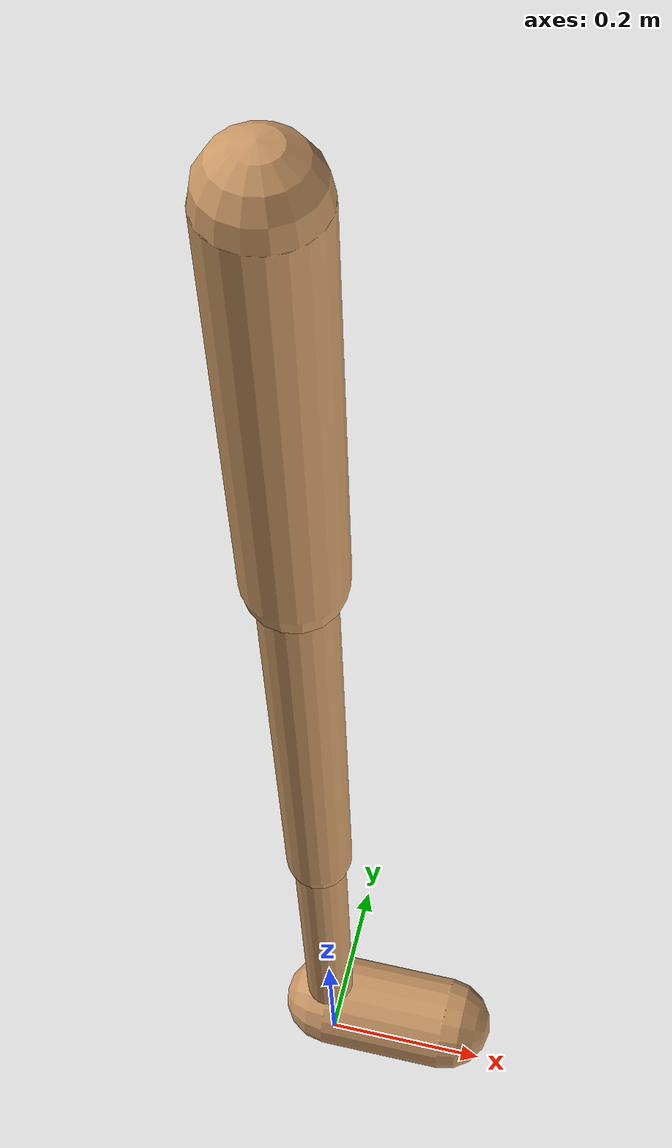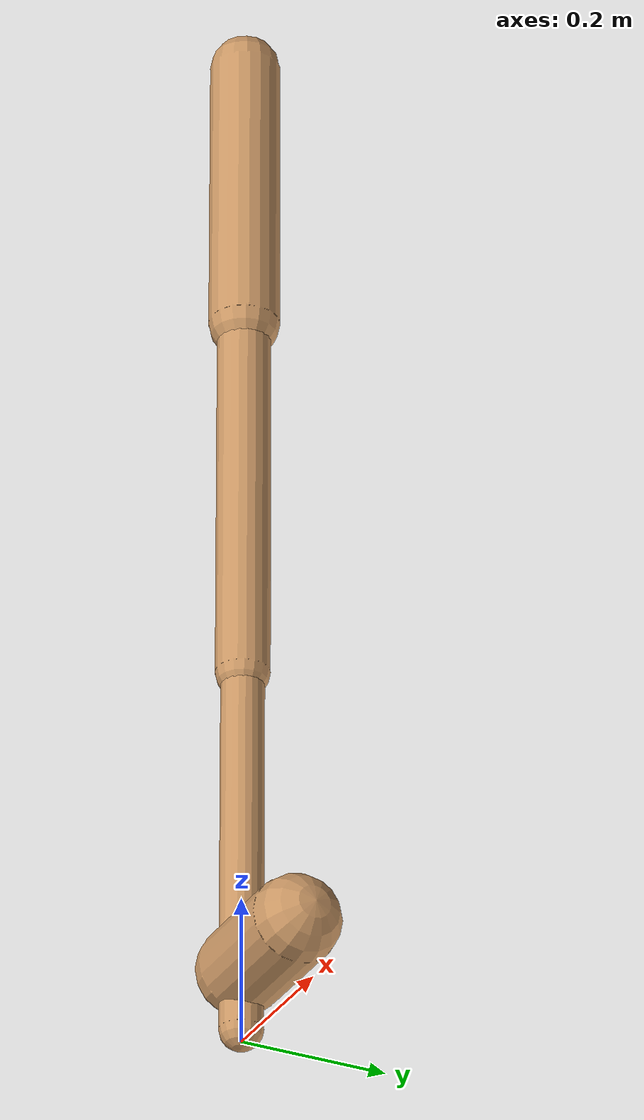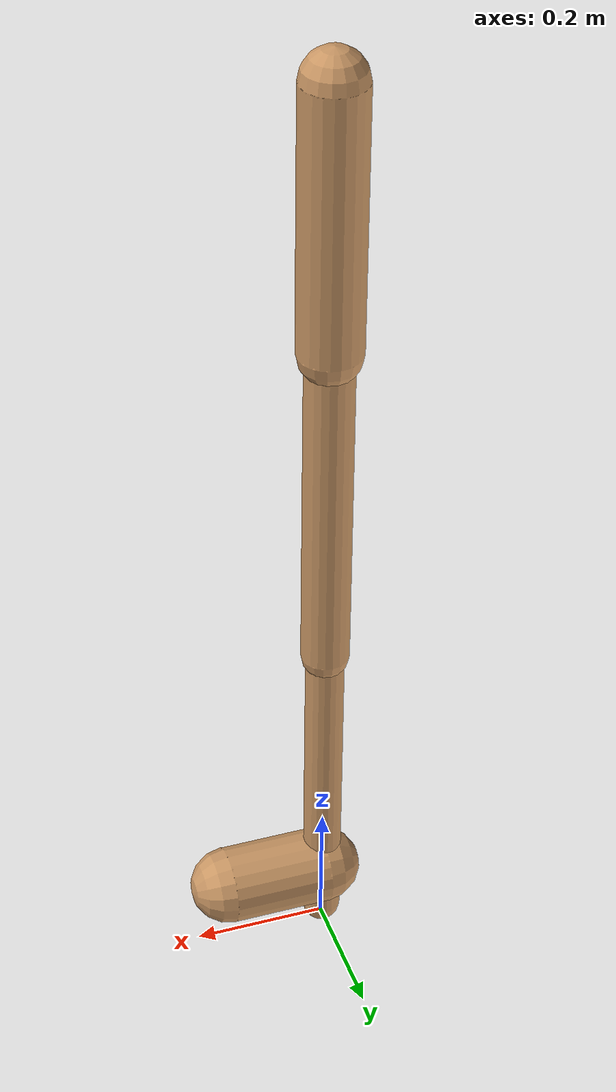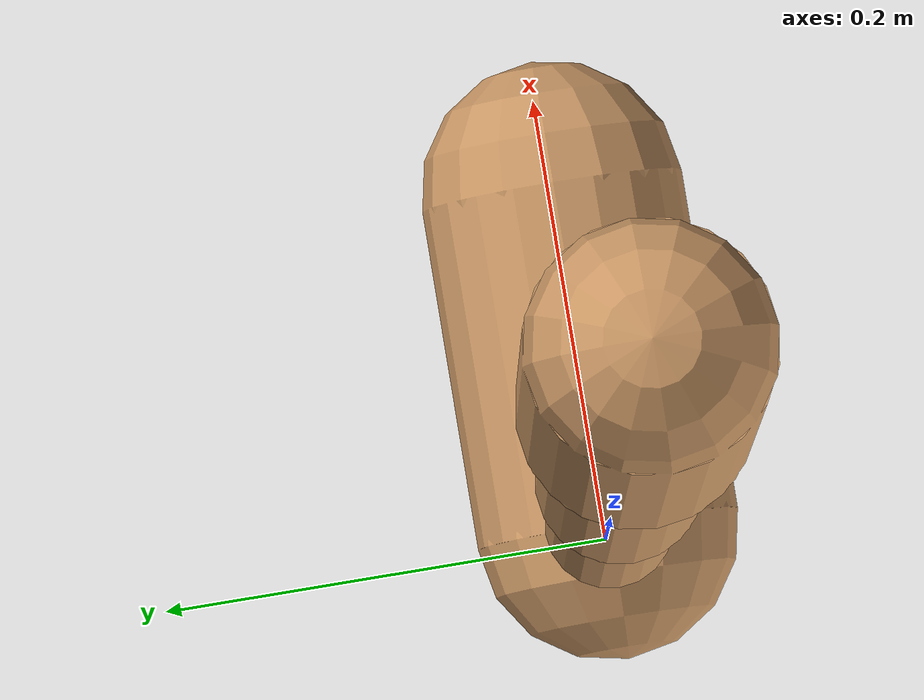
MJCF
<mujoco model="walker2d">
  <compiler angle="degree" coordinate="global" inertiafromgeom="true" />
  <default>
    <joint armature="0.01" damping=".1" limited="true" />
    <geom conaffinity="0" condim="3" contype="1" density="1000" friction="0.8 .1 .1" rgba="0.8 0.6 .4 1" />
  </default>
  <option integrator="RK4" timestep="0.002" />
  <worldbody>

    <body name="torso" pos="0 0 0.1568443020666312">
      <joint armature="0" axis="1 0 0" damping="0" limited="false" name="ignorex" pos="0 0 0" stiffness="0" type="slide" />
      <joint armature="0" axis="0 0 1" damping="0" limited="false" name="ignorez" pos="0 0 0" ref="1.25" stiffness="0" type="slide" />
      <joint armature="0" axis="0 1 0" damping="0" limited="false" name="ignorey" pos="0 0 0" stiffness="0" type="hinge" />
      <geom fromto="0 0 1.45 0 0 1.05" name="torso_geom" size="0.04714431817988906" type="capsule" />
      <body name="thigh">
        <joint axis="0 -1 0" name="thigh_joint" pos="0 0 1.05" range="-150 0" type="hinge" />
        <geom fromto="0.0 0.0 1.05 0.0 0.0 0.5257053306000168" name="thigh_geom" size="0.035731555219335756" type="capsule" />
        <body name="leg" pos="0.0 0.0 -0.0742946693999832">
          <joint axis="0 -1 0" name="leg_joint" pos="0 0 0.6" range="-150 0" type="hinge" />
          <geom fromto="0.0 0.0 0.6 0.0 0.0 0.01745036733335202" name="leg_geom" size="0.028585244175468604" type="capsule" />
          <body name="foot" pos="0.0 0.0 -0.08254963266664798">
            <joint axis="0 -1 0" name="foot_joint" pos="0 0 0.1" range="-45 45" type="hinge" />
            <geom fromto="0.0 0.0 0.1 0.15207274935202003 0.0 0.1" name="foot_geom" size="0.05825056751133083" type="capsule" />
          </body>
        </body>
      </body>

      <body name="thigh_left">
        <joint axis="0 -1 0" name="thigh_left_joint" pos="0 0 1.05" range="-150 0" type="hinge" />
        <geom fromto="0.0 0.0 1.05 0.0 0.0 0.5257053306000168" name="thigh_left_geom" rgba=".7 .3 .6 1" size="0.035731555219335756" type="capsule" />
        <body name="leg_left" pos="0.0 0.0 -0.0742946693999832">
          <joint axis="0 -1 0" name="leg_left_joint" pos="0 0 0.6" range="-150 0" type="hinge" />
          <geom fromto="0.0 0.0 0.6 0.0 0.0 0.01745036733335202" name="leg_left_geom" rgba=".7 .3 .6 1" size="0.028585244175468604" type="capsule" />
          <body name="foot_left" pos="0.0 0.0 -0.08254963266664798">
            <joint axis="0 -1 0" name="foot_left_joint" pos="0 0 0.1" range="-45 45" type="hinge" />
            <geom fromto="0.0 0.0 0.1 0.15207274935202003 0.0 0.1" name="foot_left_geom" rgba=".7 .3 .6 1" size="0.05825056751133083" type="capsule" />
          </body>
        </body>
      </body>
    </body>
  </worldbody>
  <actuator>

    <motor ctrllimited="true" ctrlrange="-1.0 1.0" gear="100" joint="thigh_joint" />
    <motor ctrllimited="true" ctrlrange="-1.0 1.0" gear="100" joint="leg_joint" />
    <motor ctrllimited="true" ctrlrange="-1.0 1.0" gear="100" joint="foot_joint" />
    <motor ctrllimited="true" ctrlrange="-1.0 1.0" gear="100" joint="thigh_left_joint" />
    <motor ctrllimited="true" ctrlrange="-1.0 1.0" gear="100" joint="leg_left_joint" />
    <motor ctrllimited="true" ctrlrange="-1.0 1.0" gear="100" joint="foot_left_joint" />

  </actuator>
</mujoco>
